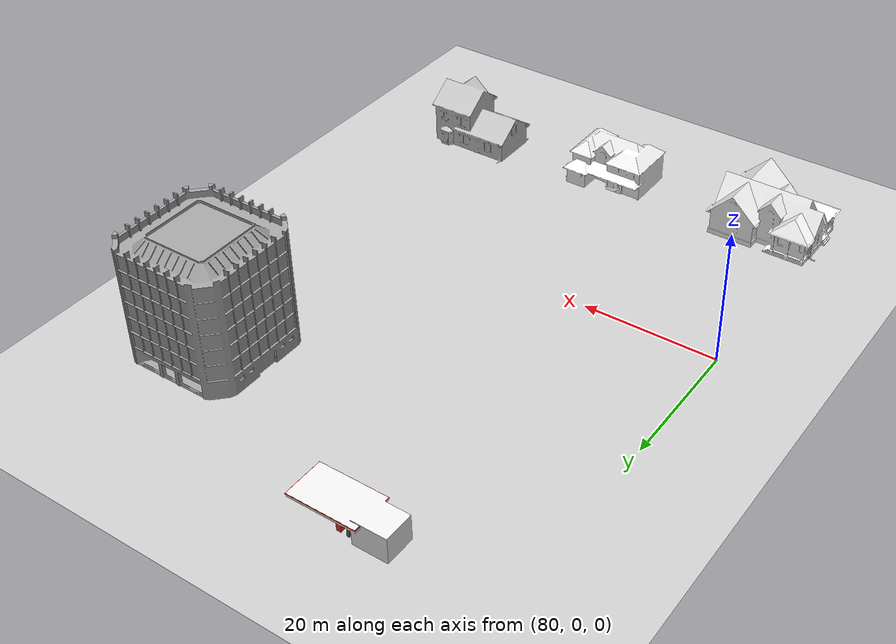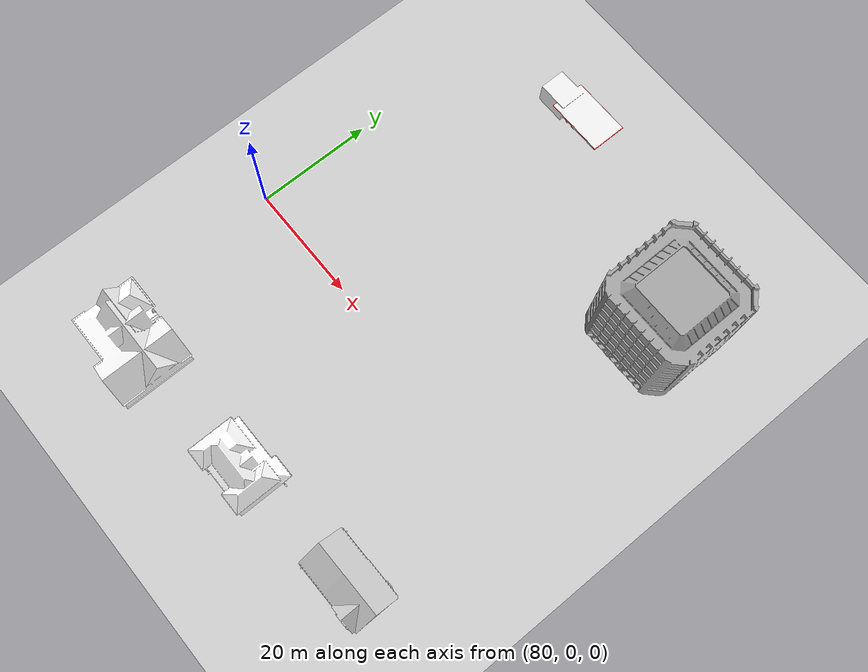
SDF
<sdf version="1.6">
 <world name="default">
  <model name="ground_plane">
   <static>1</static>
   <link name="link">
    <collision name="collision">
     <geometry><plane><normal>0 0 1</normal><size>5000 5000</size></plane></geometry>
     <surface><friction><ode><mu>1</mu><mu2>1</mu2></ode></friction></surface>
    </collision>
    <visual name="runway">
     <pose>0 0 0.005 0 -0 0</pose>
     <cast_shadows>0</cast_shadows>
     <geometry><plane><normal>0 0 1</normal><size>1829 45</size></plane></geometry>
     <material>
      <script><uri>file://media/materials/scripts/gazebo.material</uri><name>Gazebo/Runway</name></script>
     </material>
    </visual>
    <visual name="grass">
     <pose>0 0 -0.1 0 -0 0</pose>
     <cast_shadows>0</cast_shadows>
     <geometry><plane><normal>0 0 1</normal><size>5000 5000</size></plane></geometry>
     <material>
      <script><uri>file://media/materials/scripts/gazebo.material</uri><name>Gazebo/Grass</name></script>
     </material>
    </visual>
   </link>
  </model>
  <model name="House 1">
   <static>1</static>
   <link name="link">
    <collision name="collision">
     <geometry><mesh><uri>model://house_1/meshes/house_1.dae</uri><scale>1.5 1.5 1.5</scale></mesh></geometry>
    </collision>
    <visual name="visual">
     <geometry><mesh><uri>model://house_1/meshes/house_1.dae</uri><scale>1.5 1.5 1.5</scale></mesh></geometry>
     <material>
      <script>
       <uri>model://house_1/materials/scripts</uri>
       <uri>model://house_1/materials/textures</uri>
       <name>House_1/Diffuse</name>
      </script>
      <shader type="normal_map_tangent_space"><normal_map>House_1_Normal.png</normal_map></shader>
     </material>
    </visual>
   </link>
   <pose>87.0973 -30.6724 -0.090902 0 -0 0</pose>
  </model>
  <model name="House 2">
   <static>1</static>
   <link name="link">
    <collision name="collision">
     <geometry><mesh><uri>model://house_2/meshes/house_2.dae</uri><scale>1.5 1.5 1.5</scale></mesh></geometry>
    </collision>
    <visual name="visual">
     <geometry><mesh><uri>model://house_2/meshes/house_2.dae</uri><scale>1.5 1.5 1.5</scale></mesh></geometry>
     <material>
      <script>
       <uri>model://house_2/materials/scripts</uri>
       <uri>model://house_2/materials/textures</uri>
       <uri>model://house_1/materials/textures</uri>
       <name>House_2/Diffuse</name>
      </script>
      <shader type="normal_map_tangent_space">
       <normal_map>model://house_1/materials/textures/House_1_Normal.png</normal_map>
      </shader>
     </material>
    </visual>
   </link>
   <pose>111.758 -29.8814 -0.061015 0 -0 0</pose>
  </model>
  <model name="House 3">
   <static>1</static>
   <link name="link">
    <collision name="collision">
     <geometry><mesh><uri>model://house_3/meshes/house_3.dae</uri><scale>1.5 1.5 1.5</scale></mesh></geometry>
    </collision>
    <visual name="visual">
     <geometry><mesh><uri>model://house_3/meshes/house_3.dae</uri><scale>1.5 1.5 1.5</scale></mesh></geometry>
     <material>
      <script>
       <uri>model://house_3/materials/scripts</uri>
       <uri>model://house_3/materials/textures</uri>
       <uri>model://house_1/materials/textures</uri>
       <name>House_3/Diffuse</name>
      </script>
      <shader type="normal_map_tangent_space">
       <normal_map>model://house_1/materials/textures/House_1_Normal.png</normal_map>
      </shader>
     </material>
    </visual>
   </link>
   <pose>135.652 -27.2021 -0.07909 0 0 -3.13653</pose>
  </model>
  <model name="Gas Station">
   <static>1</static>
   <link name="link">
    <collision name="collision">
     <geometry><mesh><uri>model://gas_station/meshes/gas_station.dae</uri></mesh></geometry>
    </collision>
    <visual name="visual">
     <geometry><mesh><uri>model://gas_station/meshes/gas_station.dae</uri></mesh></geometry>
     <material>
      <script>
       <uri>model://gas_station/materials/scripts</uri>
       <uri>model://gas_station/materials/textures</uri>
       <name>GasStation/Diffuse</name>
      </script>
      <shader type="normal_map_tangent_space"><normal_map>GasStation_Normal.png</normal_map></shader>
     </material>
    </visual>
   </link>
   <pose>100.573 48.7465 -0.159105 0 -0 0</pose>
  </model>
  <model name="Office Building">
   <static>1</static>
   <link name="link">
    <collision name="collision">
     <geometry><mesh><uri>model://office_building/meshes/office_building.dae</uri></mesh></geometry>
    </collision>
    <visual name="visual">
     <geometry><mesh><uri>model://office_building/meshes/office_building.dae</uri></mesh></geometry>
    </visual>
   </link>
   <pose>135.818 33.8641 -0.17907 0 -0 0</pose>
  </model>
 </world>
</sdf>
